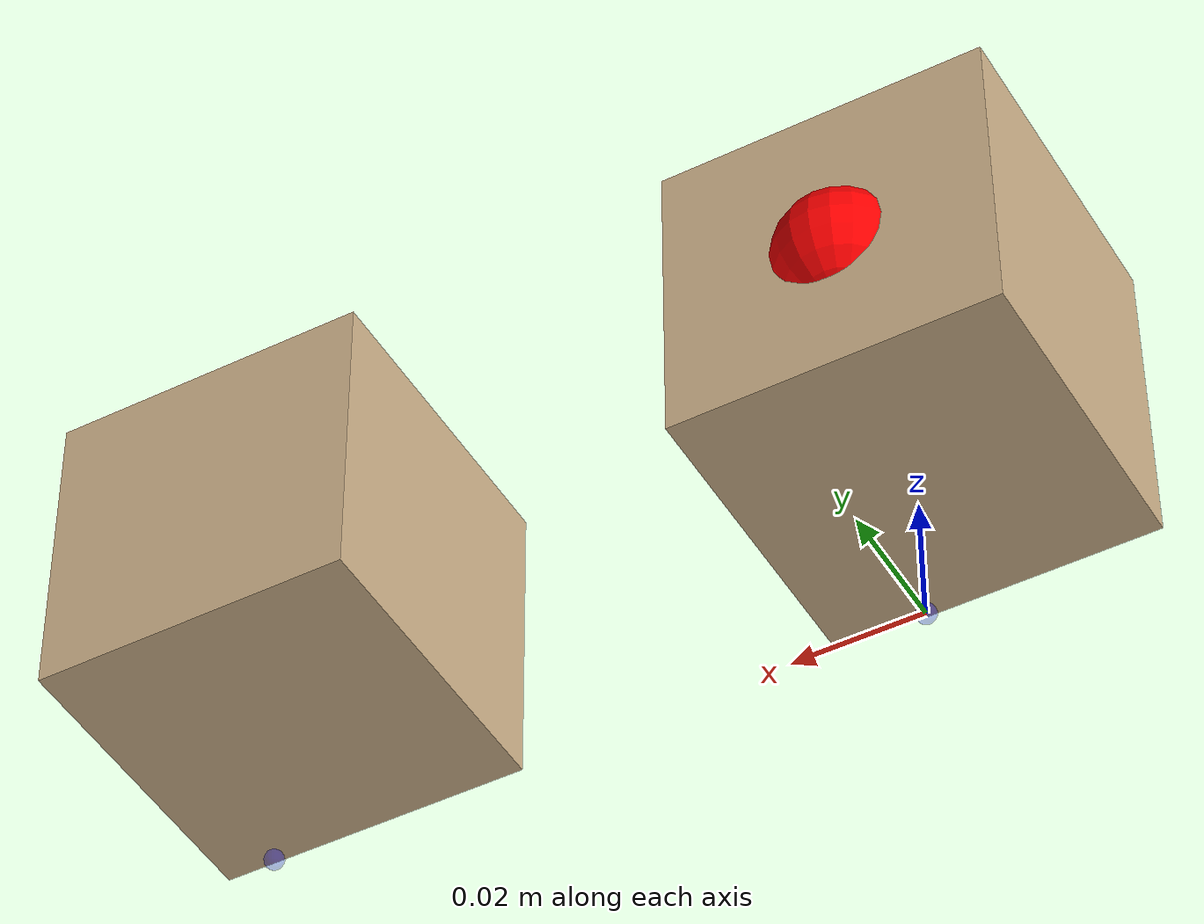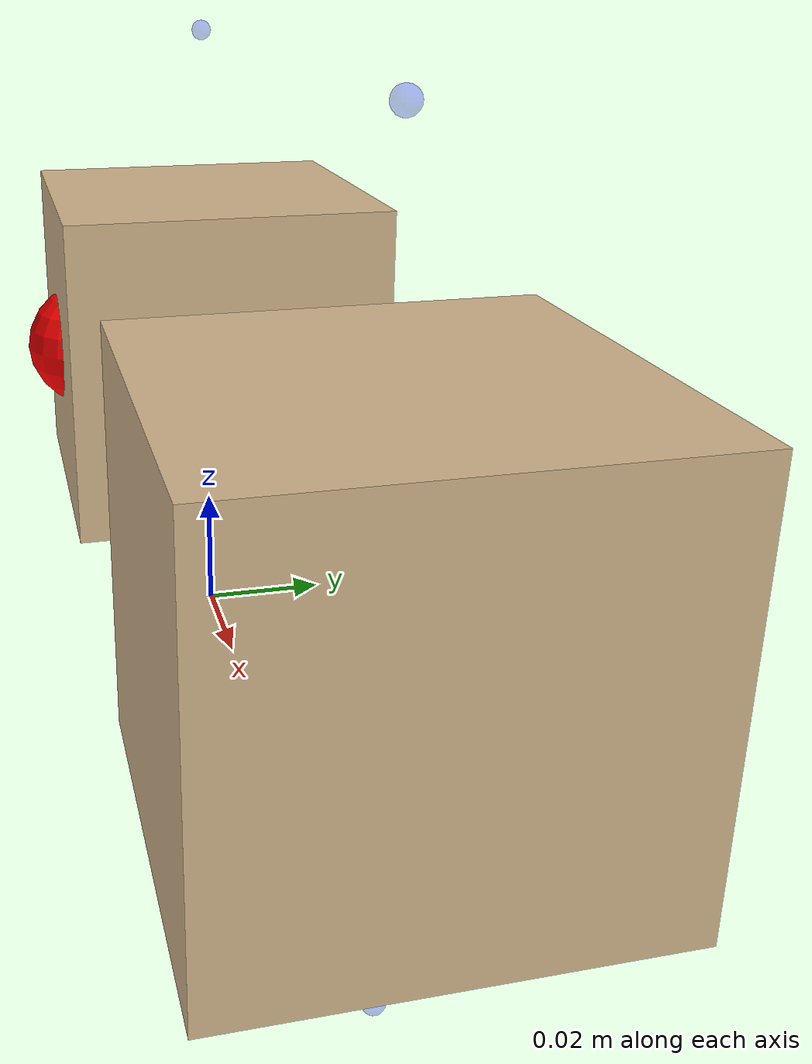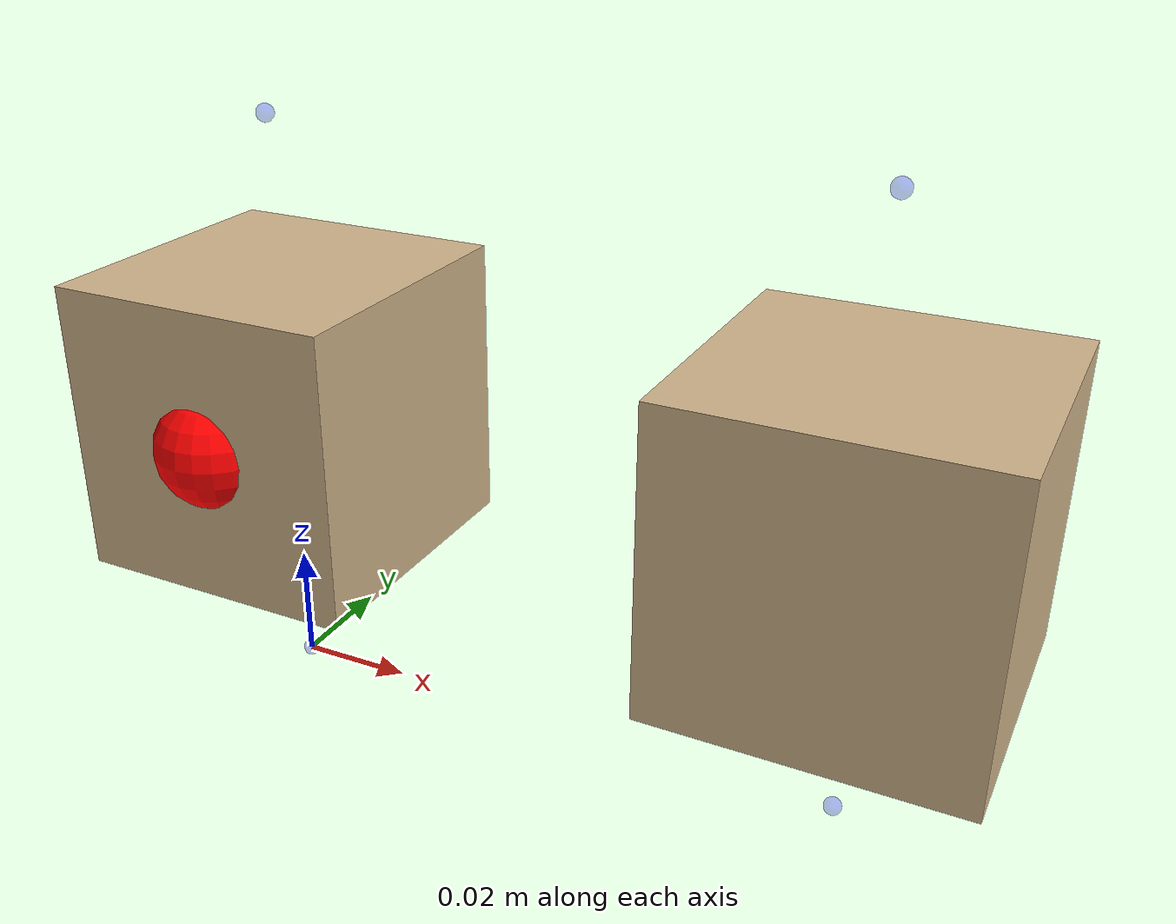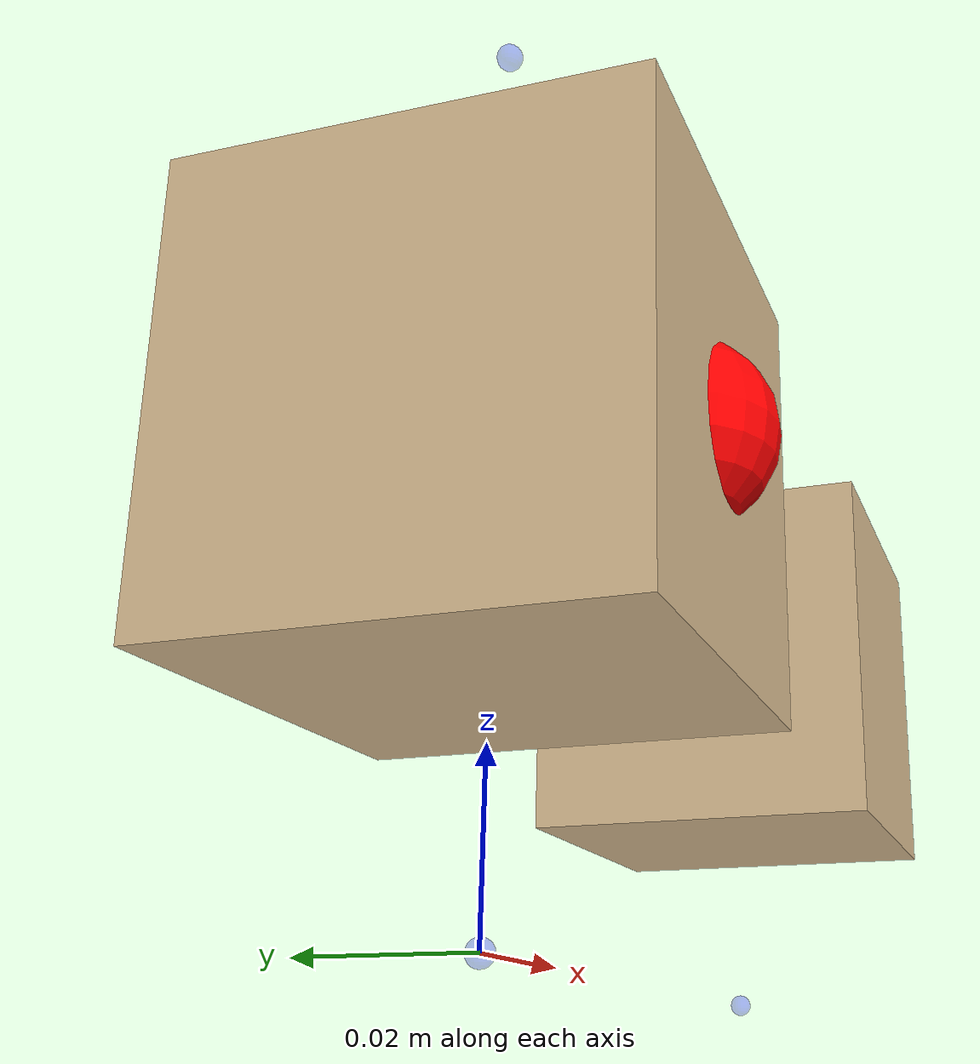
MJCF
<mujoco model="singleblock">
  <custom>
    <numeric data="0.0 0.0 0.05 0.51919501 0.52560512 0.47367611 0.47938163" name="0_part0_initpos" />
    <numeric data="0.101 0.0 0.05 0.51919501 0.52560512 0.47367611 0.47938163" name="1_part1_initpos" />
  </custom>
  <asset>
    <texture file="../textures/light-wood.png" name="tex-light-wood" type="2d" />
    <material name="light-wood" reflectance="0.5" texrepeat="20 20" texture="tex-light-wood" texuniform="true" />
  </asset>
  <equality>
    <weld active="false" body1="0_part0" body2="1_part1" solimp="1 1 0.5" solref="0.01 0.3" />
  </equality>
  <worldbody>
    <body name="0_part0" pos="0.0 0.0 0.05" quat="1 0 0 0">
      <site name="ltgt_site0" pos="0 0.02 0" size="0.01 0.01 0.01" rgba="1 0 0 1" type="sphere" group="1"></site>
      <site name="rtgt_site0" pos="0 -0.02 0" size="0.01 0.01 0.01" rgba="1 0 0 1" type="sphere" group="1"></site>
      <geom density="100" material="light-wood" name="0_part0_geom" pos="0 0 0" rgba="0.82 0.71 0.55 1" size="0.025 0.025 0.025" solref="0.001 1" type="box" />
      <site name="0_part0_bottom_site" pos="0.0 0.0 -0.05" rgba="0 0 1 0.3" size="0.0015" />
      <site name="0_part0_top_site" pos="0.0 0.0 0.05" rgba="0 0 1 0.3" size="0.0015" />
      <site name="0_part0_horizontal_radius_site" pos="0. 0. 0." rgba="0 0 1 0" size="0.04" />
    </body>
    <body name="1_part1" pos="0.101 0.0 0.05" quat="1 0 0 0">
      <geom density="100" material="light-wood" name="1_part1_geom" pos="0 0 0" rgba="0.82 0.71 0.55 1" size="0.025 0.025 0.025" solref="0.001 1" type="box" />
      <site name="1_part1_bottom_site" pos="0.0 0.0 -0.05" rgba="0 0 1 0.3" size="0.0015" />
      <site name="1_part1_top_site" pos="0.0 0.0 0.05" rgba="0 0 1 0.3" size="0.0015" />
      <site name="1_part1_horizontal_radius_site" pos="0. 0. 0." rgba="0 0 1 0" size="0.04" />
    </body>
  </worldbody>
</mujoco>
